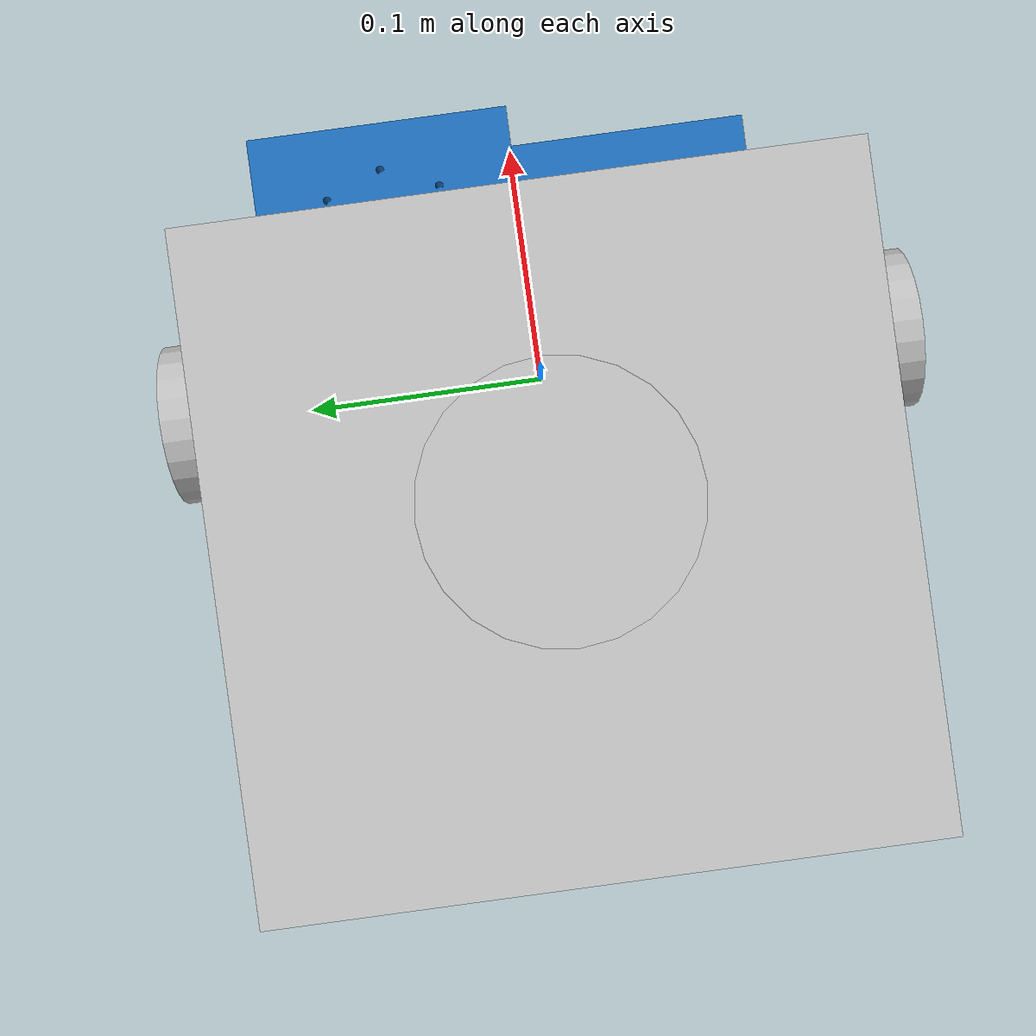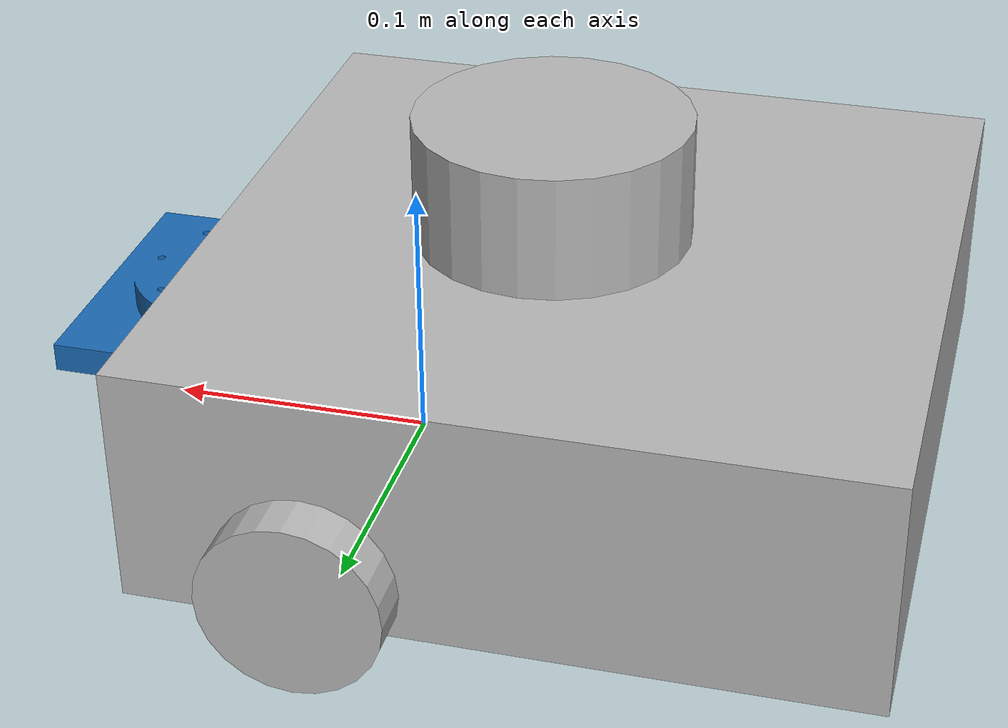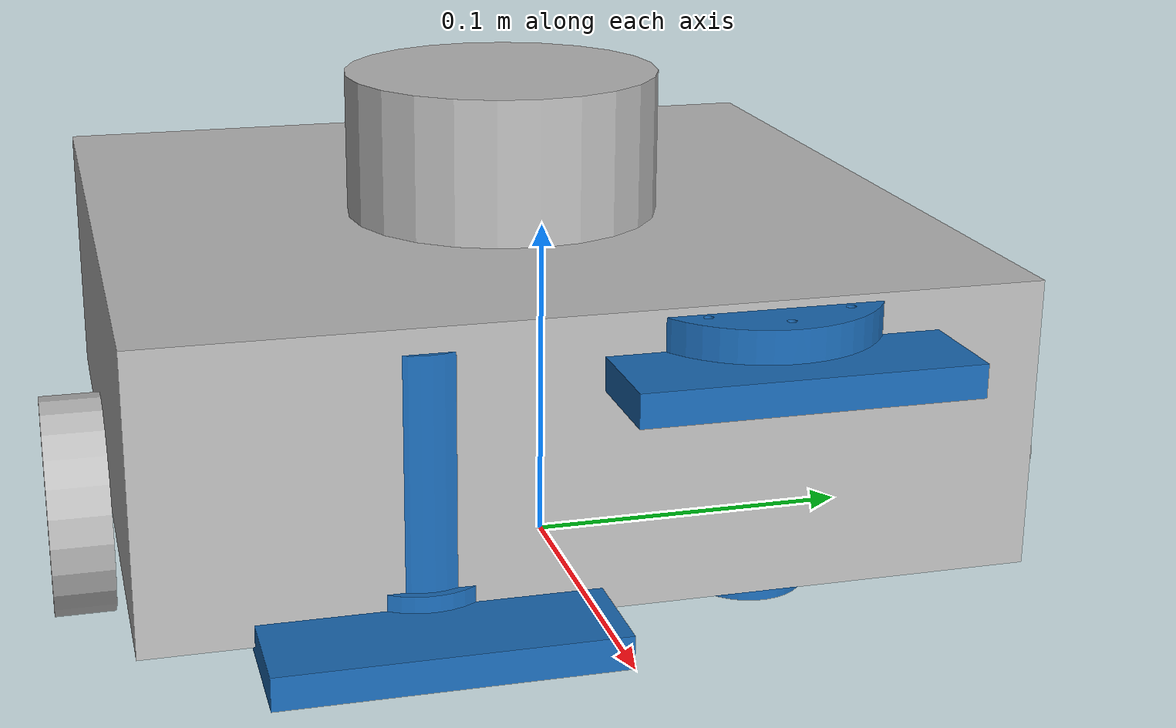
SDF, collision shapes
<sdf version='1.7'>
  <model name='hose_robot'>
    <pose>0 0 0 0 -0 0</pose>
    <link name='base_footprint'/>
    <link name='base_link'>
      <inertial>
        <pose>-0.064 0 0.048 0 -0 0</pose>
        <inertia>
          <ixx>0.0421114</ixx>
          <ixy>0</ixy>
          <ixz>0</ixz>
          <iyy>0.0421114</iyy>
          <iyz>0</iyz>
          <izz>0.0752549</izz>
        </inertia>
        <mass>1.37291</mass>
      </inertial>
      <collision name='base_collision'>
        <pose>-0.064 0 0.048 0 -0 0</pose>
        <geometry>
          <box>
            <size>0.265 0.265 0.089</size>
          </box>
        </geometry>
      </collision>
      <visual name='base_visual'>
        <pose>-0.064 0 0 0 -0 0</pose>
        <geometry>
          <mesh>
            <uri>model://turtlebot3_waffle/meshes/waffle_base.dae</uri>
            <scale>0.001 0.001 0.001</scale>
          </mesh>
        </geometry>
      </visual>
    </link>
    <link name='imu_link'>
      <sensor name='tb3_imu' type='imu'>
        <always_on>1</always_on>
        <update_rate>200</update_rate>
        <imu>
          <angular_velocity>
            <x>
              <noise type='gaussian'>
                <mean>0</mean>
                <stddev>0.0002</stddev>
              </noise>
            </x>
            <y>
              <noise type='gaussian'>
                <mean>0</mean>
                <stddev>0.0002</stddev>
              </noise>
            </y>
            <z>
              <noise type='gaussian'>
                <mean>0</mean>
                <stddev>0.0002</stddev>
              </noise>
            </z>
          </angular_velocity>
          <linear_acceleration>
            <x>
              <noise type='gaussian'>
                <mean>0</mean>
                <stddev>0.017</stddev>
              </noise>
            </x>
            <y>
              <noise type='gaussian'>
                <mean>0</mean>
                <stddev>0.017</stddev>
              </noise>
            </y>
            <z>
              <noise type='gaussian'>
                <mean>0</mean>
                <stddev>0.017</stddev>
              </noise>
            </z>
          </linear_acceleration>
          <angular_velocity/>
          <linear_acceleration/>
        </imu>
        <plugin name='turtlebot3_imu' filename='libgazebo_ros_imu_sensor.so'>
          <ros>
            <remapping>~/out:=imu</remapping>
          </ros>
        </plugin>
      </sensor>
    </link>
    <link name='base_scan'>
      <inertial>
        <pose>-0.052 0 0.111 0 -0 0</pose>
        <inertia>
          <ixx>0.001</ixx>
          <ixy>0</ixy>
          <ixz>0</ixz>
          <iyy>0.001</iyy>
          <iyz>0</iyz>
          <izz>0.001</izz>
        </inertia>
        <mass>0.114</mass>
      </inertial>
      <collision name='lidar_sensor_collision'>
        <pose>-0.052 0 0.111 0 -0 0</pose>
        <geometry>
          <cylinder>
            <radius>0.0508</radius>
            <length>0.055</length>
          </cylinder>
        </geometry>
      </collision>
      <visual name='lidar_sensor_visual'>
        <pose>-0.064 0 0.121 0 -0 0</pose>
        <geometry>
          <mesh>
            <uri>model://turtlebot3_waffle/meshes/lds.dae</uri>
            <scale>0.001 0.001 0.001</scale>
          </mesh>
        </geometry>
      </visual>
      <sensor name='hls_lfcd_lds' type='ray'>
        <always_on>1</always_on>
        <visualize>0</visualize>
        <pose>-0.064 0 0.121 0 -0 0</pose>
        <update_rate>5</update_rate>
        <ray>
          <scan>
            <horizontal>
              <samples>360</samples>
              <resolution>1</resolution>
              <min_angle>0</min_angle>
              <max_angle>6.28</max_angle>
            </horizontal>
          </scan>
          <range>
            <min>0.12</min>
            <max>3.5</max>
            <resolution>0.015</resolution>
          </range>
          <noise>
            <type>gaussian</type>
            <mean>0</mean>
            <stddev>0.01</stddev>
          </noise>
        </ray>
        <plugin name='turtlebot3_laserscan' filename='libgazebo_ros_ray_sensor.so'>
          <ros>
            <remapping>~/out:=scan</remapping>
          </ros>
          <output_type>sensor_msgs/LaserScan</output_type>
          <frame_name>base_scan</frame_name>
        </plugin>
      </sensor>
    </link>
    <link name='wheel_left_link'>
      <inertial>
        <pose>0 0.144 0.023 -1.57 0 0</pose>
        <inertia>
          <ixx>1.11756e-05</ixx>
          <ixy>-4.23698e-11</ixy>
          <ixz>-5.93817e-09</ixz>
          <iyy>1.11924e-05</iyy>
          <iyz>-1.44001e-11</iyz>
          <izz>2.07126e-05</izz>
        </inertia>
        <mass>0.1</mass>
      </inertial>
      <collision name='wheel_left_collision'>
        <pose>0 0.144 0.023 -1.57 0 0</pose>
        <geometry>
          <cylinder>
            <radius>0.033</radius>
            <length>0.018</length>
          </cylinder>
        </geometry>
        <surface>
          <friction>
            <ode>
              <mu>100000</mu>
              <mu2>100000</mu2>
              <fdir1>0 0 0</fdir1>
              <slip1>0</slip1>
              <slip2>0</slip2>
            </ode>
          </friction>
          <contact>
            <ode>
              <soft_cfm>0</soft_cfm>
              <soft_erp>0.2</soft_erp>
              <kp>100000</kp>
              <kd>1</kd>
              <max_vel>0.01</max_vel>
              <min_depth>0.001</min_depth>
            </ode>
          </contact>
        </surface>
      </collision>
      <visual name='wheel_left_visual'>
        <pose>0 0.144 0.023 0 -0 0</pose>
        <geometry>
          <mesh>
            <uri>model://turtlebot3_waffle/meshes/tire.dae</uri>
            <scale>0.001 0.001 0.001</scale>
          </mesh>
        </geometry>
      </visual>
    </link>
    <link name='wheel_right_link'>
      <inertial>
        <pose>0 -0.144 0.023 -1.57 0 0</pose>
        <inertia>
          <ixx>1.11756e-05</ixx>
          <ixy>-4.23698e-11</ixy>
          <ixz>-5.93817e-09</ixz>
          <iyy>1.11924e-05</iyy>
          <iyz>-1.44001e-11</iyz>
          <izz>2.07126e-05</izz>
        </inertia>
        <mass>0.1</mass>
      </inertial>
      <collision name='wheel_right_collision'>
        <pose>0 -0.144 0.023 -1.57 0 0</pose>
        <geometry>
          <cylinder>
            <radius>0.033</radius>
            <length>0.018</length>
          </cylinder>
        </geometry>
        <surface>
          <friction>
            <ode>
              <mu>100000</mu>
              <mu2>100000</mu2>
              <fdir1>0 0 0</fdir1>
              <slip1>0</slip1>
              <slip2>0</slip2>
            </ode>
          </friction>
          <contact>
            <ode>
              <soft_cfm>0</soft_cfm>
              <soft_erp>0.2</soft_erp>
              <kp>100000</kp>
              <kd>1</kd>
              <max_vel>0.01</max_vel>
              <min_depth>0.001</min_depth>
            </ode>
          </contact>
        </surface>
      </collision>
      <visual name='wheel_right_visual'>
        <pose>0 -0.144 0.023 0 -0 0</pose>
        <geometry>
          <mesh>
            <uri>model://turtlebot3_waffle/meshes/tire.dae</uri>
            <scale>0.001 0.001 0.001</scale>
          </mesh>
        </geometry>
      </visual>
    </link>
    <link name='caster_back_right_link'>
      <pose>-0.177 -0.064 -0.004 -1.57 0 0</pose>
      <inertial>
        <mass>0.001</mass>
        <inertia>
          <ixx>1e-05</ixx>
          <ixy>0</ixy>
          <ixz>0</ixz>
          <iyy>1e-05</iyy>
          <iyz>0</iyz>
          <izz>1e-05</izz>
        </inertia>
      </inertial>
      <collision name='collision'>
        <geometry>
          <sphere>
            <radius>0.005</radius>
          </sphere>
        </geometry>
        <surface>
          <contact>
            <ode>
              <soft_cfm>0</soft_cfm>
              <soft_erp>0.2</soft_erp>
              <kp>100000</kp>
              <kd>1</kd>
              <max_vel>0.01</max_vel>
              <min_depth>0.001</min_depth>
            </ode>
          </contact>
        </surface>
      </collision>
    </link>
    <link name='caster_back_left_link'>
      <pose>-0.177 0.064 -0.004 -1.57 0 0</pose>
      <inertial>
        <mass>0.001</mass>
        <inertia>
          <ixx>1e-05</ixx>
          <ixy>0</ixy>
          <ixz>0</ixz>
          <iyy>1e-05</iyy>
          <iyz>0</iyz>
          <izz>1e-05</izz>
        </inertia>
      </inertial>
      <collision name='collision'>
        <geometry>
          <sphere>
            <radius>0.005</radius>
          </sphere>
        </geometry>
        <surface>
          <contact>
            <ode>
              <soft_cfm>0</soft_cfm>
              <soft_erp>0.2</soft_erp>
              <kp>100000</kp>
              <kd>1</kd>
              <max_vel>0.01</max_vel>
              <min_depth>0.001</min_depth>
            </ode>
          </contact>
        </surface>
      </collision>
    </link>
    <link name='camera_link'/>
    <link name='camera_rgb_frame'>
      <inertial>
        <pose>0.069 -0.047 0.107 0 -0 0</pose>
        <inertia>
          <ixx>0.001</ixx>
          <ixy>0</ixy>
          <ixz>0</ixz>
          <iyy>0.001</iyy>
          <iyz>0</iyz>
          <izz>0.001</izz>
        </inertia>
        <mass>0.035</mass>
      </inertial>
      <pose>0.069 -0.047 0.107 0 -0 0</pose>
      <sensor name='camera' type='depth'>
        <pose>0 0 0 0 -0 0</pose>
        <always_on>1</always_on>
        <visualize>1</visualize>
        <update_rate>1</update_rate>
        <camera name='intel_realsense_r200'>
          <horizontal_fov>1.02974</horizontal_fov>
          <image>
            <width>640</width>
            <height>480</height>
            <format>B8G8R8</format>
          </image>
          <clip>
            <near>0.05</near>
            <far>8</far>
          </clip>
          <noise>
            <type>gaussian</type>
            <mean>0</mean>
            <stddev>0.007</stddev>
          </noise>
        </camera>
        <plugin name='camera_driver' filename='libgazebo_ros_camera.so'>
          <ros/>
          <frame_name>camera_rgb_frame</frame_name>
          <min_depth>0.1</min_depth>
          <max_depth>100</max_depth>
        </plugin>
      </sensor>
    </link>
    <joint name='base_joint' type='fixed'>
      <parent>base_footprint</parent>
      <child>base_link</child>
    </joint>
    <joint name='wheel_left_joint' type='revolute'>
      <parent>base_link</parent>
      <child>wheel_left_link</child>
      <pose>0 0.144 0.023 -1.57 0 0</pose>
      <axis>
        <xyz>0 0 1</xyz>
        <limit>
          <lower>-1e+16</lower>
          <upper>1e+16</upper>
        </limit>
      </axis>
    </joint>
    <joint name='wheel_right_joint' type='revolute'>
      <parent>base_link</parent>
      <child>wheel_right_link</child>
      <pose>0 -0.144 0.023 -1.57 0 0</pose>
      <axis>
        <xyz>0 0 1</xyz>
        <limit>
          <lower>-1e+16</lower>
          <upper>1e+16</upper>
        </limit>
      </axis>
    </joint>
    <joint name='caster_back_right_joint' type='ball'>
      <parent>base_link</parent>
      <child>caster_back_right_link</child>
    </joint>
    <joint name='caster_back_left_joint' type='ball'>
      <parent>base_link</parent>
      <child>caster_back_left_link</child>
    </joint>
    <joint name='imu_joint' type='fixed'>
      <parent>base_link</parent>
      <child>imu_link</child>
      <pose>-0.032 0 0.068 0 -0 0</pose>
      <axis>
        <xyz>0 0 1</xyz>
        <limit>
          <lower>-1e+16</lower>
          <upper>1e+16</upper>
        </limit>
      </axis>
    </joint>
    <joint name='lidar_joint' type='fixed'>
      <parent>base_link</parent>
      <child>base_scan</child>
      <pose>-0.064 0 0.121 0 -0 0</pose>
      <axis>
        <xyz>0 0 1</xyz>
        <limit>
          <lower>-1e+16</lower>
          <upper>1e+16</upper>
        </limit>
      </axis>
    </joint>
    <joint name='camera_joint' type='fixed'>
      <parent>base_link</parent>
      <child>camera_link</child>
      <pose>0.064 -0.065 0.094 0 -0 0</pose>
      <axis>
        <xyz>0 0 1</xyz>
        <limit>
          <lower>-1e+16</lower>
          <upper>1e+16</upper>
        </limit>
      </axis>
    </joint>
    <joint name='camera_rgb_joint' type='fixed'>
      <parent>camera_link</parent>
      <child>camera_rgb_frame</child>
      <pose>0.005 0.018 0.013 1 -0 0</pose>
      <axis>
        <xyz>0 0 1</xyz>
        <limit>
          <lower>-1e+16</lower>
          <upper>1e+16</upper>
        </limit>
      </axis>
    </joint>
    <plugin name='turtlebot3_diff_drive' filename='libgazebo_ros_diff_drive.so'>
      <ros>
        <remapping>/tf:=tf</remapping>
      </ros>
      <update_rate>30</update_rate>
      <left_joint>wheel_left_joint</left_joint>
      <right_joint>wheel_right_joint</right_joint>
      <wheel_separation>0.287</wheel_separation>
      <wheel_diameter>0.066</wheel_diameter>
      <max_wheel_torque>20</max_wheel_torque>
      <max_wheel_acceleration>1.0</max_wheel_acceleration>
      <command_topic>cmd_vel</command_topic>
      <publish_odom>1</publish_odom>
      <publish_odom_tf>1</publish_odom_tf>
      <publish_wheel_tf>0</publish_wheel_tf>
      <odometry_topic>odom</odometry_topic>
      <odometry_frame>odom</odometry_frame>
      <robot_base_frame>base_footprint</robot_base_frame>
    </plugin>
    <plugin name='turtlebot3_joint_state' filename='libgazebo_ros_joint_state_publisher.so'>
      <ros>
        <remapping>~/out:=joint_states</remapping>
      </ros>
      <update_rate>30</update_rate>
      <joint_name>wheel_left_joint</joint_name>
      <joint_name>wheel_right_joint</joint_name>
    </plugin>
    <link name='hose_plate_base_link'>
      <visual name='hose_plate_visual'>
        <pose>0 0 0 1.57 -0 0</pose>
        <geometry>
          <mesh>
            <uri>file:///home/jaenote/rokey_week5_ws/src/week5_model/mesh/hose/Base2.stl</uri>
            <scale>0.001 0.001 0.001</scale>
          </mesh>
        </geometry>
        <material>
          <ambient>0.1 0.4118 0.7059 1</ambient>
          <diffuse>0.1 0.4118 0.7059 1</diffuse>
        </material>
      </visual>
      <collision name='hose_plate_collision'>
        <pose>0 0 0 1.57 -0 0</pose>
        <geometry>
          <mesh>
            <uri>file:///home/jaenote/rokey_week5_ws/src/week5_model/mesh/hose/Base2.stl</uri>
            <scale>0.001 0.001 0.001</scale>
          </mesh>
        </geometry>
      </collision>
    </link>
    <joint name='hose_to_waffle_joint' type='fixed'>
      <parent>base_link</parent>
      <child>hose_plate_base_link</child>
      <pose>-0.295 0.04 0 0 -0 0</pose>
    </joint>
    <link name='top_link'>
      <visual name='top_visual'>
        <pose>0 0 0 1.57 -0 1.57</pose>
        <geometry>
          <mesh>
            <uri>file:///home/jaenote/rokey_week5_ws/src/week5_model/mesh/hose/Top2.stl</uri>
            <scale>0.001 0.001 0.001</scale>
          </mesh>
        </geometry>
        <material>
          <ambient>0.1 0.4118 0.7059 1</ambient>
          <diffuse>0.1 0.4118 0.7059 1</diffuse>
        </material>
      </visual>
      <collision name='top_collision'>
        <pose>0 0 0 1.57 -0 1.57</pose>
        <geometry>
          <mesh>
            <uri>file:///home/jaenote/rokey_week5_ws/src/week5_model/mesh/hose/Top2.stl</uri>
            <scale>0.001 0.001 0.001</scale>
          </mesh>
        </geometry>
      </collision>
    </link>
    <joint name='top_joint' type='prismatic'>
      <parent>hose_plate_base_link</parent>
      <child>top_link</child>
      <pose>0 -0.1 0.02 0 -0 0</pose>
      <axis>
        <xyz>0 0 1</xyz>
        <limit>
          <lower>0</lower>
          <upper>0.07</upper>
          <effort>50</effort>
          <velocity>0.035</velocity>
        </limit>
      </axis>
    </joint>
    <plugin name='top_joint_controller' filename='libgazebo_ros_control.so'>
      <robotNamespace>/hose_plate</robotNamespace>
      <controlPeriod>0.001</controlPeriod>
      <jointName>top_joint</jointName>
      <hardwareInterface>EffortJointInterface</hardwareInterface>
    </plugin>
  </model>
</sdf>
